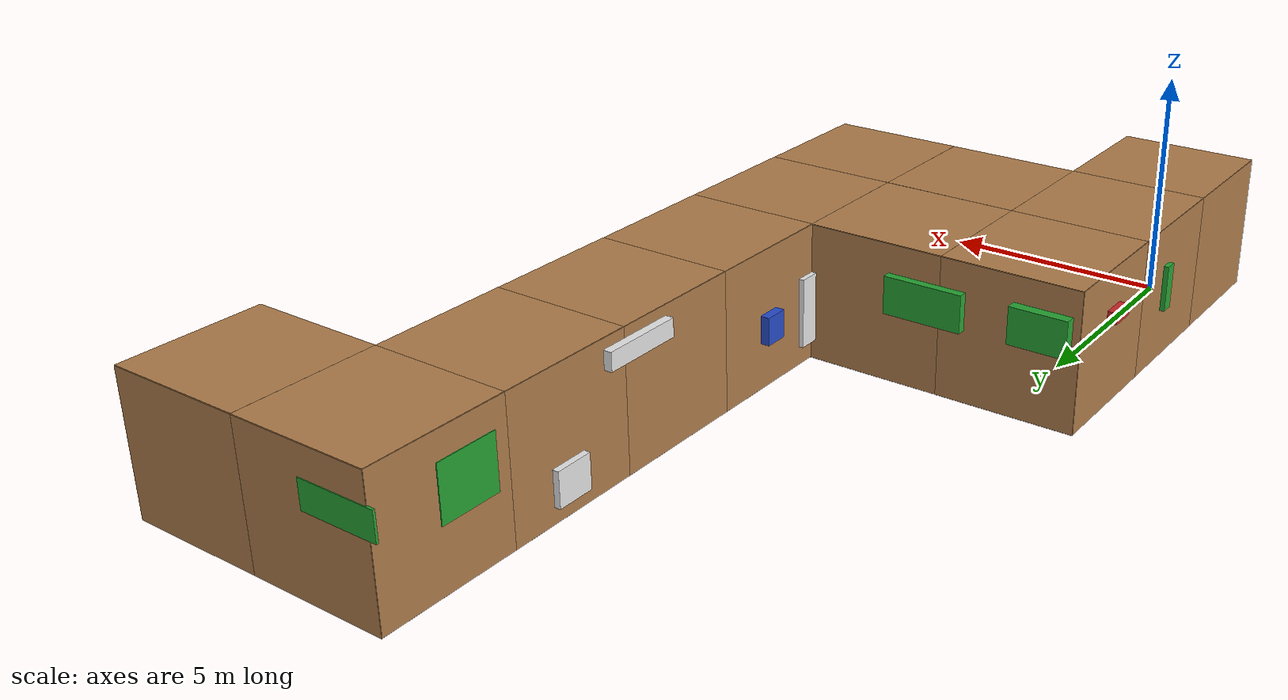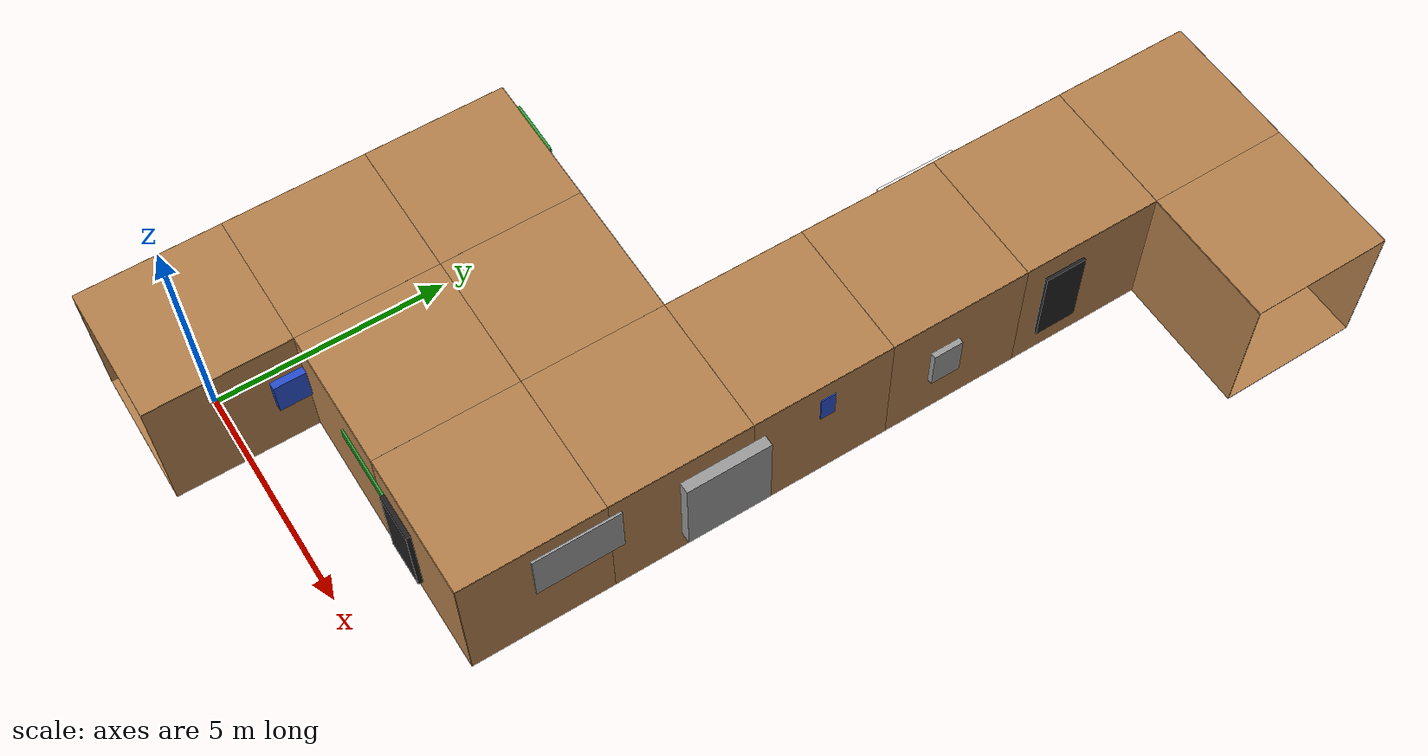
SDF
<?xml version='1.0' encoding='us-ascii'?>
<sdf version="1.6">
  <model name="corridor_wood">
    <model name="wall_right_0_0_0_0">
      <static>1</static>
      <pose>1.5 0.0 1.5 0.0 0.0 1.57</pose>
      <link name="link">
        <collision name="collision">
          <geometry>
            <box>
              <size>3 0.02 3</size>
            </box>
          </geometry>
        </collision>
        <visual name="visual">
          <material>
            <script>
              <name>Gazebo/WoodFloor</name>
              <uri>file://media/materials/scripts/gazebo.material</uri>
            </script>
          </material>
          <geometry>
            <box>
              <size>3 0.02 3</size>
            </box>
          </geometry>
        </visual>
      </link>
    </model>
    <model name="wall_left_0_0_0_0">
      <static>1</static>
      <pose>-1.5 0.0 1.5 0.0 0.0 1.57</pose>
      <link name="link">
        <collision name="collision">
          <geometry>
            <box>
              <size>3 0.02 3</size>
            </box>
          </geometry>
        </collision>
        <visual name="visual">
          <material>
            <script>
              <name>Gazebo/WoodFloor</name>
              <uri>file://media/materials/scripts/gazebo.material</uri>
            </script>
          </material>
          <geometry>
            <box>
              <size>3 0.02 3</size>
            </box>
          </geometry>
        </visual>
      </link>
    </model>
    <model name="wall_top_0_0_0_0">
      <static>1</static>
      <pose>0.0 0.0 3.0 1.57 0.0 0.0</pose>
      <link name="link">
        <collision name="collision">
          <geometry>
            <box>
              <size>3 0.02 3</size>
            </box>
          </geometry>
        </collision>
        <visual name="visual">
          <material>
            <script>
              <name>Gazebo/WoodFloor</name>
              <uri>file://media/materials/scripts/gazebo.material</uri>
            </script>
          </material>
          <geometry>
            <box>
              <size>3 0.02 3</size>
            </box>
          </geometry>
        </visual>
      </link>
    </model>
    <model name="wall_bottom_0_0_0_0">
      <static>1</static>
      <pose>0.0 0.0 0.0 1.57 0.0 0.0</pose>
      <link name="link">
        <collision name="collision">
          <geometry>
            <box>
              <size>3 0.02 3</size>
            </box>
          </geometry>
        </collision>
        <visual name="visual">
          <material>
            <script>
              <name>Gazebo/WoodFloor</name>
              <uri>file://media/materials/scripts/gazebo.material</uri>
            </script>
          </material>
          <geometry>
            <box>
              <size>3 0.02 3</size>
            </box>
          </geometry>
        </visual>
      </link>
    </model>
    <model name="wall_right_0_1_0_1">
      <static>1</static>
      <pose>1.5 3.0 1.5 0.0 0.0 1.57</pose>
      <link name="link">
        <collision name="collision">
          <geometry>
            <box>
              <size>3 0.02 3</size>
            </box>
          </geometry>
        </collision>
        <visual name="visual">
          <material>
            <script>
              <name>Gazebo/WoodFloor</name>
              <uri>file://media/materials/scripts/gazebo.material</uri>
            </script>
          </material>
          <geometry>
            <box>
              <size>3 0.02 3</size>
            </box>
          </geometry>
        </visual>
      </link>
    </model>
    <model name="wall_left_0_1_0_1">
      <static>1</static>
      <pose>-1.5 3.0 1.5 0.0 0.0 1.57</pose>
      <link name="link">
        <collision name="collision">
          <geometry>
            <box>
              <size>3 0.02 3</size>
            </box>
          </geometry>
        </collision>
        <visual name="visual">
          <material>
            <script>
              <name>Gazebo/WoodFloor</name>
              <uri>file://media/materials/scripts/gazebo.material</uri>
            </script>
          </material>
          <geometry>
            <box>
              <size>3 0.02 3</size>
            </box>
          </geometry>
        </visual>
      </link>
    </model>
    <model name="wall_top_0_1_0_1">
      <static>1</static>
      <pose>0.0 3.0 3.0 1.57 0.0 0.0</pose>
      <link name="link">
        <collision name="collision">
          <geometry>
            <box>
              <size>3 0.02 3</size>
            </box>
          </geometry>
        </collision>
        <visual name="visual">
          <material>
            <script>
              <name>Gazebo/WoodFloor</name>
              <uri>file://media/materials/scripts/gazebo.material</uri>
            </script>
          </material>
          <geometry>
            <box>
              <size>3 0.02 3</size>
            </box>
          </geometry>
        </visual>
      </link>
    </model>
    <model name="wall_bottom_0_1_0_1">
      <static>1</static>
      <pose>0.0 3.0 0.0 1.57 0.0 0.0</pose>
      <link name="link">
        <collision name="collision">
          <geometry>
            <box>
              <size>3 0.02 3</size>
            </box>
          </geometry>
        </collision>
        <visual name="visual">
          <material>
            <script>
              <name>Gazebo/WoodFloor</name>
              <uri>file://media/materials/scripts/gazebo.material</uri>
            </script>
          </material>
          <geometry>
            <box>
              <size>3 0.02 3</size>
            </box>
          </geometry>
        </visual>
      </link>
    </model>
    <model name="panel_0_1_0_1">
      <static>1</static>
      <pose>-1.5 3.331047748664364 1.62310669647 0.0 0.0 0.0</pose>
      <link name="link">
        <collision name="collision">
          <geometry>
            <box>
              <size>0.227891967127 0.286861621309 0.992219195227</size>
            </box>
          </geometry>
        </collision>
        <visual name="visual">
          <material>
            <script>
              <name>Gazebo/Green</name>
              <uri>file://media/materials/scripts/gazebo.material</uri>
            </script>
          </material>
          <geometry>
            <box>
              <size>0.227891967127 0.286861621309 0.992219195227</size>
            </box>
          </geometry>
        </visual>
      </link>
    </model>
    <model name="panel_0_1_1_1">
      <static>1</static>
      <pose>1.5 1.7800548940044145 1.67422577796 0.0 0.0 0.0</pose>
      <link name="link">
        <collision name="collision">
          <geometry>
            <box>
              <size>0.341212131548 1.92256971082 0.76470502832</size>
            </box>
          </geometry>
        </collision>
        <visual name="visual">
          <material>
            <script>
              <name>Gazebo/Blue</name>
              <uri>file://media/materials/scripts/gazebo.material</uri>
            </script>
          </material>
          <geometry>
            <box>
              <size>0.341212131548 1.92256971082 0.76470502832</size>
            </box>
          </geometry>
        </visual>
      </link>
    </model>
    <model name="wall_front_0_2_0_2">
      <static>1</static>
      <pose>0.0 7.5 1.5 0.0 0.0 0.0</pose>
      <link name="link">
        <collision name="collision">
          <geometry>
            <box>
              <size>3 0.02 3</size>
            </box>
          </geometry>
        </collision>
        <visual name="visual">
          <material>
            <script>
              <name>Gazebo/WoodFloor</name>
              <uri>file://media/materials/scripts/gazebo.material</uri>
            </script>
          </material>
          <geometry>
            <box>
              <size>3 0.02 3</size>
            </box>
          </geometry>
        </visual>
      </link>
    </model>
    <model name="wall_left_0_2_0_2">
      <static>1</static>
      <pose>-1.5 6.0 1.5 0.0 0.0 1.57</pose>
      <link name="link">
        <collision name="collision">
          <geometry>
            <box>
              <size>3 0.02 3</size>
            </box>
          </geometry>
        </collision>
        <visual name="visual">
          <material>
            <script>
              <name>Gazebo/WoodFloor</name>
              <uri>file://media/materials/scripts/gazebo.material</uri>
            </script>
          </material>
          <geometry>
            <box>
              <size>3 0.02 3</size>
            </box>
          </geometry>
        </visual>
      </link>
    </model>
    <model name="wall_top_0_2_0_2">
      <static>1</static>
      <pose>0.0 6.0 3.0 1.57 0.0 0.0</pose>
      <link name="link">
        <collision name="collision">
          <geometry>
            <box>
              <size>3 0.02 3</size>
            </box>
          </geometry>
        </collision>
        <visual name="visual">
          <material>
            <script>
              <name>Gazebo/WoodFloor</name>
              <uri>file://media/materials/scripts/gazebo.material</uri>
            </script>
          </material>
          <geometry>
            <box>
              <size>3 0.02 3</size>
            </box>
          </geometry>
        </visual>
      </link>
    </model>
    <model name="wall_bottom_0_2_0_2">
      <static>1</static>
      <pose>0.0 6.0 0.0 1.57 0.0 0.0</pose>
      <link name="link">
        <collision name="collision">
          <geometry>
            <box>
              <size>3 0.02 3</size>
            </box>
          </geometry>
        </collision>
        <visual name="visual">
          <material>
            <script>
              <name>Gazebo/WoodFloor</name>
              <uri>file://media/materials/scripts/gazebo.material</uri>
            </script>
          </material>
          <geometry>
            <box>
              <size>3 0.02 3</size>
            </box>
          </geometry>
        </visual>
      </link>
    </model>
    <model name="panel_0_2_0_2">
      <static>1</static>
      <pose>-1.5 6.016824595635878 2.04890038794 0.0 0.0 0.0</pose>
      <link name="link">
        <collision name="collision">
          <geometry>
            <box>
              <size>0.428532003397 0.573175527415 0.240866871531</size>
            </box>
          </geometry>
        </collision>
        <visual name="visual">
          <material>
            <script>
              <name>Gazebo/Red</name>
              <uri>file://media/materials/scripts/gazebo.material</uri>
            </script>
          </material>
          <geometry>
            <box>
              <size>0.428532003397 0.573175527415 0.240866871531</size>
            </box>
          </geometry>
        </visual>
      </link>
    </model>
    <model name="panel_0_2_1_2">
      <static>1</static>
      <pose>-0.7196081561729433 7.5 2.04670019403 0.0 0.0 1.57</pose>
      <link name="link">
        <collision name="collision">
          <geometry>
            <box>
              <size>0.485968628858 1.23503073666 0.792312905663</size>
            </box>
          </geometry>
        </collision>
        <visual name="visual">
          <material>
            <script>
              <name>Gazebo/Green</name>
              <uri>file://media/materials/scripts/gazebo.material</uri>
            </script>
          </material>
          <geometry>
            <box>
              <size>0.485968628858 1.23503073666 0.792312905663</size>
            </box>
          </geometry>
        </visual>
      </link>
    </model>
    <model name="wall_front_1_2_0_2">
      <static>1</static>
      <pose>4.5 6.0 1.5 0.0 0.0 -1.57</pose>
      <link name="link">
        <collision name="collision">
          <geometry>
            <box>
              <size>3 0.02 3</size>
            </box>
          </geometry>
        </collision>
        <visual name="visual">
          <material>
            <script>
              <name>Gazebo/WoodFloor</name>
              <uri>file://media/materials/scripts/gazebo.material</uri>
            </script>
          </material>
          <geometry>
            <box>
              <size>3 0.02 3</size>
            </box>
          </geometry>
        </visual>
      </link>
    </model>
    <model name="wall_left_1_2_0_2">
      <static>1</static>
      <pose>3.0 7.5 1.5 0.0 0.0 0.0</pose>
      <link name="link">
        <collision name="collision">
          <geometry>
            <box>
              <size>3 0.02 3</size>
            </box>
          </geometry>
        </collision>
        <visual name="visual">
          <material>
            <script>
              <name>Gazebo/WoodFloor</name>
              <uri>file://media/materials/scripts/gazebo.material</uri>
            </script>
          </material>
          <geometry>
            <box>
              <size>3 0.02 3</size>
            </box>
          </geometry>
        </visual>
      </link>
    </model>
    <model name="wall_top_1_2_0_2">
      <static>1</static>
      <pose>3.0 6.0 3.0 1.57 0.0 -1.57</pose>
      <link name="link">
        <collision name="collision">
          <geometry>
            <box>
              <size>3 0.02 3</size>
            </box>
          </geometry>
        </collision>
        <visual name="visual">
          <material>
            <script>
              <name>Gazebo/WoodFloor</name>
              <uri>file://media/materials/scripts/gazebo.material</uri>
            </script>
          </material>
          <geometry>
            <box>
              <size>3 0.02 3</size>
            </box>
          </geometry>
        </visual>
      </link>
    </model>
    <model name="wall_bottom_1_2_0_2">
      <static>1</static>
      <pose>3.0 6.0 0.0 1.57 0.0 -1.57</pose>
      <link name="link">
        <collision name="collision">
          <geometry>
            <box>
              <size>3 0.02 3</size>
            </box>
          </geometry>
        </collision>
        <visual name="visual">
          <material>
            <script>
              <name>Gazebo/WoodFloor</name>
              <uri>file://media/materials/scripts/gazebo.material</uri>
            </script>
          </material>
          <geometry>
            <box>
              <size>3 0.02 3</size>
            </box>
          </geometry>
        </visual>
      </link>
    </model>
    <model name="panel_1_2_0_2">
      <static>1</static>
      <pose>1.7922977335804722 7.5 1.96970691631 0.0 0.0 -1.57</pose>
      <link name="link">
        <collision name="collision">
          <geometry>
            <box>
              <size>0.400242912424 1.72234589471 0.81605229614</size>
            </box>
          </geometry>
        </collision>
        <visual name="visual">
          <material>
            <script>
              <name>Gazebo/Green</name>
              <uri>file://media/materials/scripts/gazebo.material</uri>
            </script>
          </material>
          <geometry>
            <box>
              <size>0.400242912424 1.72234589471 0.81605229614</size>
            </box>
          </geometry>
        </visual>
      </link>
    </model>
    <model name="panel_1_2_1_2">
      <static>1</static>
      <pose>4.5 5.887159069608958 1.518289515 0.0 0.0 0.0</pose>
      <link name="link">
        <collision name="collision">
          <geometry>
            <box>
              <size>0.31830925449 0.402979886042 1.96029187354</size>
            </box>
          </geometry>
        </collision>
        <visual name="visual">
          <material>
            <script>
              <name>Gazebo/Red</name>
              <uri>file://media/materials/scripts/gazebo.material</uri>
            </script>
          </material>
          <geometry>
            <box>
              <size>0.31830925449 0.402979886042 1.96029187354</size>
            </box>
          </geometry>
        </visual>
      </link>
    </model>
    <model name="wall_front_1_1_0_3">
      <static>1</static>
      <pose>3.0 1.5 1.5 0.0 0.0 3.14</pose>
      <link name="link">
        <collision name="collision">
          <geometry>
            <box>
              <size>3 0.02 3</size>
            </box>
          </geometry>
        </collision>
        <visual name="visual">
          <material>
            <script>
              <name>Gazebo/WoodFloor</name>
              <uri>file://media/materials/scripts/gazebo.material</uri>
            </script>
          </material>
          <geometry>
            <box>
              <size>3 0.02 3</size>
            </box>
          </geometry>
        </visual>
      </link>
    </model>
    <model name="wall_right_1_1_0_3">
      <static>1</static>
      <pose>1.5 3.0 1.5 0.0 0.0 4.71</pose>
      <link name="link">
        <collision name="collision">
          <geometry>
            <box>
              <size>3 0.02 3</size>
            </box>
          </geometry>
        </collision>
        <visual name="visual">
          <material>
            <script>
              <name>Gazebo/WoodFloor</name>
              <uri>file://media/materials/scripts/gazebo.material</uri>
            </script>
          </material>
          <geometry>
            <box>
              <size>3 0.02 3</size>
            </box>
          </geometry>
        </visual>
      </link>
    </model>
    <model name="wall_top_1_1_0_3">
      <static>1</static>
      <pose>3.0 3.0 3.0 1.57 0.0 3.14</pose>
      <link name="link">
        <collision name="collision">
          <geometry>
            <box>
              <size>3 0.02 3</size>
            </box>
          </geometry>
        </collision>
        <visual name="visual">
          <material>
            <script>
              <name>Gazebo/WoodFloor</name>
              <uri>file://media/materials/scripts/gazebo.material</uri>
            </script>
          </material>
          <geometry>
            <box>
              <size>3 0.02 3</size>
            </box>
          </geometry>
        </visual>
      </link>
    </model>
    <model name="wall_bottom_1_1_0_3">
      <static>1</static>
      <pose>3.0 3.0 0.0 1.57 0.0 3.14</pose>
      <link name="link">
        <collision name="collision">
          <geometry>
            <box>
              <size>3 0.02 3</size>
            </box>
          </geometry>
        </collision>
        <visual name="visual">
          <material>
            <script>
              <name>Gazebo/WoodFloor</name>
              <uri>file://media/materials/scripts/gazebo.material</uri>
            </script>
          </material>
          <geometry>
            <box>
              <size>3 0.02 3</size>
            </box>
          </geometry>
        </visual>
      </link>
    </model>
    <model name="panel_1_1_0_3">
      <static>1</static>
      <pose>1.5 2.7317593252260473 2.20752770361 0.0 0.0 3.14</pose>
      <link name="link">
        <collision name="collision">
          <geometry>
            <box>
              <size>0.26485547791 0.454269086721 0.879510129666</size>
            </box>
          </geometry>
        </collision>
        <visual name="visual">
          <material>
            <script>
              <name>Gazebo/Red</name>
              <uri>file://media/materials/scripts/gazebo.material</uri>
            </script>
          </material>
          <geometry>
            <box>
              <size>0.26485547791 0.454269086721 0.879510129666</size>
            </box>
          </geometry>
        </visual>
      </link>
    </model>
    <model name="panel_1_1_1_3">
      <static>1</static>
      <pose>4.203759438638075 1.5 2.12378672634 0.0 0.0 4.71</pose>
      <link name="link">
        <collision name="collision">
          <geometry>
            <box>
              <size>0.108125171131 1.99956372455 0.220673910054</size>
            </box>
          </geometry>
        </collision>
        <visual name="visual">
          <material>
            <script>
              <name>Gazebo/Green</name>
              <uri>file://media/materials/scripts/gazebo.material</uri>
            </script>
          </material>
          <geometry>
            <box>
              <size>0.108125171131 1.99956372455 0.220673910054</size>
            </box>
          </geometry>
        </visual>
      </link>
    </model>
    <model name="wall_front_2_1_0_3">
      <static>1</static>
      <pose>7.5 3.0 1.5 0.0 0.0 -1.57</pose>
      <link name="link">
        <collision name="collision">
          <geometry>
            <box>
              <size>3 0.02 3</size>
            </box>
          </geometry>
        </collision>
        <visual name="visual">
          <material>
            <script>
              <name>Gazebo/WoodFloor</name>
              <uri>file://media/materials/scripts/gazebo.material</uri>
            </script>
          </material>
          <geometry>
            <box>
              <size>3 0.02 3</size>
            </box>
          </geometry>
        </visual>
      </link>
    </model>
    <model name="wall_right_2_1_0_3">
      <static>1</static>
      <pose>6.0 1.5 1.5 0.0 0.0 0.0</pose>
      <link name="link">
        <collision name="collision">
          <geometry>
            <box>
              <size>3 0.02 3</size>
            </box>
          </geometry>
        </collision>
        <visual name="visual">
          <material>
            <script>
              <name>Gazebo/WoodFloor</name>
              <uri>file://media/materials/scripts/gazebo.material</uri>
            </script>
          </material>
          <geometry>
            <box>
              <size>3 0.02 3</size>
            </box>
          </geometry>
        </visual>
      </link>
    </model>
    <model name="wall_top_2_1_0_3">
      <static>1</static>
      <pose>6.0 3.0 3.0 1.57 0.0 -1.57</pose>
      <link name="link">
        <collision name="collision">
          <geometry>
            <box>
              <size>3 0.02 3</size>
            </box>
          </geometry>
        </collision>
        <visual name="visual">
          <material>
            <script>
              <name>Gazebo/WoodFloor</name>
              <uri>file://media/materials/scripts/gazebo.material</uri>
            </script>
          </material>
          <geometry>
            <box>
              <size>3 0.02 3</size>
            </box>
          </geometry>
        </visual>
      </link>
    </model>
    <model name="wall_bottom_2_1_0_3">
      <static>1</static>
      <pose>6.0 3.0 0.0 1.57 0.0 -1.57</pose>
      <link name="link">
        <collision name="collision">
          <geometry>
            <box>
              <size>3 0.02 3</size>
            </box>
          </geometry>
        </collision>
        <visual name="visual">
          <material>
            <script>
              <name>Gazebo/WoodFloor</name>
              <uri>file://media/materials/scripts/gazebo.material</uri>
            </script>
          </material>
          <geometry>
            <box>
              <size>3 0.02 3</size>
            </box>
          </geometry>
        </visual>
      </link>
    </model>
    <model name="panel_2_1_0_3">
      <static>1</static>
      <pose>5.30611550686144 1.5 1.38783729444 0.0 0.0 -1.57</pose>
      <link name="link">
        <collision name="collision">
          <geometry>
            <box>
              <size>0.222668644864 0.98060975829 1.80105485366</size>
            </box>
          </geometry>
        </collision>
        <visual name="visual">
          <material>
            <script>
              <name>Gazebo/Black</name>
              <uri>file://media/materials/scripts/gazebo.material</uri>
            </script>
          </material>
          <geometry>
            <box>
              <size>0.222668644864 0.98060975829 1.80105485366</size>
            </box>
          </geometry>
        </visual>
      </link>
    </model>
    <model name="panel_2_1_1_3">
      <static>1</static>
      <pose>7.5 3.838351233464932 2.04506014941 0.0 0.0 0.0</pose>
      <link name="link">
        <collision name="collision">
          <geometry>
            <box>
              <size>0.112641492494 1.81525155327 1.17501379403</size>
            </box>
          </geometry>
        </collision>
        <visual name="visual">
          <material>
            <script>
              <name>Gazebo/Grey</name>
              <uri>file://media/materials/scripts/gazebo.material</uri>
            </script>
          </material>
          <geometry>
            <box>
              <size>0.112641492494 1.81525155327 1.17501379403</size>
            </box>
          </geometry>
        </visual>
      </link>
    </model>
    <model name="wall_right_2_2_0_1">
      <static>1</static>
      <pose>7.5 6.0 1.5 0.0 0.0 1.57</pose>
      <link name="link">
        <collision name="collision">
          <geometry>
            <box>
              <size>3 0.02 3</size>
            </box>
          </geometry>
        </collision>
        <visual name="visual">
          <material>
            <script>
              <name>Gazebo/WoodFloor</name>
              <uri>file://media/materials/scripts/gazebo.material</uri>
            </script>
          </material>
          <geometry>
            <box>
              <size>3 0.02 3</size>
            </box>
          </geometry>
        </visual>
      </link>
    </model>
    <model name="wall_left_2_2_0_1">
      <static>1</static>
      <pose>4.5 6.0 1.5 0.0 0.0 1.57</pose>
      <link name="link">
        <collision name="collision">
          <geometry>
            <box>
              <size>3 0.02 3</size>
            </box>
          </geometry>
        </collision>
        <visual name="visual">
          <material>
            <script>
              <name>Gazebo/WoodFloor</name>
              <uri>file://media/materials/scripts/gazebo.material</uri>
            </script>
          </material>
          <geometry>
            <box>
              <size>3 0.02 3</size>
            </box>
          </geometry>
        </visual>
      </link>
    </model>
    <model name="wall_top_2_2_0_1">
      <static>1</static>
      <pose>6.0 6.0 3.0 1.57 0.0 0.0</pose>
      <link name="link">
        <collision name="collision">
          <geometry>
            <box>
              <size>3 0.02 3</size>
            </box>
          </geometry>
        </collision>
        <visual name="visual">
          <material>
            <script>
              <name>Gazebo/WoodFloor</name>
              <uri>file://media/materials/scripts/gazebo.material</uri>
            </script>
          </material>
          <geometry>
            <box>
              <size>3 0.02 3</size>
            </box>
          </geometry>
        </visual>
      </link>
    </model>
    <model name="wall_bottom_2_2_0_1">
      <static>1</static>
      <pose>6.0 6.0 0.0 1.57 0.0 0.0</pose>
      <link name="link">
        <collision name="collision">
          <geometry>
            <box>
              <size>3 0.02 3</size>
            </box>
          </geometry>
        </collision>
        <visual name="visual">
          <material>
            <script>
              <name>Gazebo/WoodFloor</name>
              <uri>file://media/materials/scripts/gazebo.material</uri>
            </script>
          </material>
          <geometry>
            <box>
              <size>3 0.02 3</size>
            </box>
          </geometry>
        </visual>
      </link>
    </model>
    <model name="panel_2_2_0_1">
      <static>1</static>
      <pose>7.5 6.8416956142877385 1.47997702219 0.0 0.0 0.0</pose>
      <link name="link">
        <collision name="collision">
          <geometry>
            <box>
              <size>0.475735594733 1.79334089281 1.92150373224</size>
            </box>
          </geometry>
        </collision>
        <visual name="visual">
          <material>
            <script>
              <name>Gazebo/Grey</name>
              <uri>file://media/materials/scripts/gazebo.material</uri>
            </script>
          </material>
          <geometry>
            <box>
              <size>0.475735594733 1.79334089281 1.92150373224</size>
            </box>
          </geometry>
        </visual>
      </link>
    </model>
    <model name="panel_2_2_1_1">
      <static>1</static>
      <pose>4.5 7.031312445269143 1.18704960571 0.0 0.0 0.0</pose>
      <link name="link">
        <collision name="collision">
          <geometry>
            <box>
              <size>0.239492946745 1.87810744062 1.52634486838</size>
            </box>
          </geometry>
        </collision>
        <visual name="visual">
          <material>
            <script>
              <name>Gazebo/White</name>
              <uri>file://media/materials/scripts/gazebo.material</uri>
            </script>
          </material>
          <geometry>
            <box>
              <size>0.239492946745 1.87810744062 1.52634486838</size>
            </box>
          </geometry>
        </visual>
      </link>
    </model>
    <model name="wall_right_2_3_0_1">
      <static>1</static>
      <pose>7.5 9.0 1.5 0.0 0.0 1.57</pose>
      <link name="link">
        <collision name="collision">
          <geometry>
            <box>
              <size>3 0.02 3</size>
            </box>
          </geometry>
        </collision>
        <visual name="visual">
          <material>
            <script>
              <name>Gazebo/WoodFloor</name>
              <uri>file://media/materials/scripts/gazebo.material</uri>
            </script>
          </material>
          <geometry>
            <box>
              <size>3 0.02 3</size>
            </box>
          </geometry>
        </visual>
      </link>
    </model>
    <model name="wall_left_2_3_0_1">
      <static>1</static>
      <pose>4.5 9.0 1.5 0.0 0.0 1.57</pose>
      <link name="link">
        <collision name="collision">
          <geometry>
            <box>
              <size>3 0.02 3</size>
            </box>
          </geometry>
        </collision>
        <visual name="visual">
          <material>
            <script>
              <name>Gazebo/WoodFloor</name>
              <uri>file://media/materials/scripts/gazebo.material</uri>
            </script>
          </material>
          <geometry>
            <box>
              <size>3 0.02 3</size>
            </box>
          </geometry>
        </visual>
      </link>
    </model>
    <model name="wall_top_2_3_0_1">
      <static>1</static>
      <pose>6.0 9.0 3.0 1.57 0.0 0.0</pose>
      <link name="link">
        <collision name="collision">
          <geometry>
            <box>
              <size>3 0.02 3</size>
            </box>
          </geometry>
        </collision>
        <visual name="visual">
          <material>
            <script>
              <name>Gazebo/WoodFloor</name>
              <uri>file://media/materials/scripts/gazebo.material</uri>
            </script>
          </material>
          <geometry>
            <box>
              <size>3 0.02 3</size>
            </box>
          </geometry>
        </visual>
      </link>
    </model>
    <model name="wall_bottom_2_3_0_1">
      <static>1</static>
      <pose>6.0 9.0 0.0 1.57 0.0 0.0</pose>
      <link name="link">
        <collision name="collision">
          <geometry>
            <box>
              <size>3 0.02 3</size>
            </box>
          </geometry>
        </collision>
        <visual name="visual">
          <material>
            <script>
              <name>Gazebo/WoodFloor</name>
              <uri>file://media/materials/scripts/gazebo.material</uri>
            </script>
          </material>
          <geometry>
            <box>
              <size>3 0.02 3</size>
            </box>
          </geometry>
        </visual>
      </link>
    </model>
    <model name="panel_2_3_0_1">
      <static>1</static>
      <pose>7.5 9.082100646405088 2.25308598516 0.0 0.0 0.0</pose>
      <link name="link">
        <collision name="collision">
          <geometry>
            <box>
              <size>0.0650689731958 0.317807333454 0.627186238534</size>
            </box>
          </geometry>
        </collision>
        <visual name="visual">
          <material>
            <script>
              <name>Gazebo/Blue</name>
              <uri>file://media/materials/scripts/gazebo.material</uri>
            </script>
          </material>
          <geometry>
            <box>
              <size>0.0650689731958 0.317807333454 0.627186238534</size>
            </box>
          </geometry>
        </visual>
      </link>
    </model>
    <model name="panel_2_3_1_1">
      <static>1</static>
      <pose>4.5 9.07159710192313 1.33131024656 0.0 0.0 0.0</pose>
      <link name="link">
        <collision name="collision">
          <geometry>
            <box>
              <size>0.417185237348 0.529709062058 0.606294699528</size>
            </box>
          </geometry>
        </collision>
        <visual name="visual">
          <material>
            <script>
              <name>Gazebo/Blue</name>
              <uri>file://media/materials/scripts/gazebo.material</uri>
            </script>
          </material>
          <geometry>
            <box>
              <size>0.417185237348 0.529709062058 0.606294699528</size>
            </box>
          </geometry>
        </visual>
      </link>
    </model>
    <model name="wall_right_2_4_0_1">
      <static>1</static>
      <pose>7.5 12.0 1.5 0.0 0.0 1.57</pose>
      <link name="link">
        <collision name="collision">
          <geometry>
            <box>
              <size>3 0.02 3</size>
            </box>
          </geometry>
        </collision>
        <visual name="visual">
          <material>
            <script>
              <name>Gazebo/WoodFloor</name>
              <uri>file://media/materials/scripts/gazebo.material</uri>
            </script>
          </material>
          <geometry>
            <box>
              <size>3 0.02 3</size>
            </box>
          </geometry>
        </visual>
      </link>
    </model>
    <model name="wall_left_2_4_0_1">
      <static>1</static>
      <pose>4.5 12.0 1.5 0.0 0.0 1.57</pose>
      <link name="link">
        <collision name="collision">
          <geometry>
            <box>
              <size>3 0.02 3</size>
            </box>
          </geometry>
        </collision>
        <visual name="visual">
          <material>
            <script>
              <name>Gazebo/WoodFloor</name>
              <uri>file://media/materials/scripts/gazebo.material</uri>
            </script>
          </material>
          <geometry>
            <box>
              <size>3 0.02 3</size>
            </box>
          </geometry>
        </visual>
      </link>
    </model>
    <model name="wall_top_2_4_0_1">
      <static>1</static>
      <pose>6.0 12.0 3.0 1.57 0.0 0.0</pose>
      <link name="link">
        <collision name="collision">
          <geometry>
            <box>
              <size>3 0.02 3</size>
            </box>
          </geometry>
        </collision>
        <visual name="visual">
          <material>
            <script>
              <name>Gazebo/WoodFloor</name>
              <uri>file://media/materials/scripts/gazebo.material</uri>
            </script>
          </material>
          <geometry>
            <box>
              <size>3 0.02 3</size>
            </box>
          </geometry>
        </visual>
      </link>
    </model>
    <model name="wall_bottom_2_4_0_1">
      <static>1</static>
      <pose>6.0 12.0 0.0 1.57 0.0 0.0</pose>
      <link name="link">
        <collision name="collision">
          <geometry>
            <box>
              <size>3 0.02 3</size>
            </box>
          </geometry>
        </collision>
        <visual name="visual">
          <material>
            <script>
              <name>Gazebo/WoodFloor</name>
              <uri>file://media/materials/scripts/gazebo.material</uri>
            </script>
          </material>
          <geometry>
            <box>
              <size>3 0.02 3</size>
            </box>
          </geometry>
        </visual>
      </link>
    </model>
    <model name="panel_2_4_0_1">
      <static>1</static>
      <pose>7.5 11.720896871698546 1.56400006175 0.0 0.0 0.0</pose>
      <link name="link">
        <collision name="collision">
          <geometry>
            <box>
              <size>0.254886543222 0.63744263287 0.91540111249</size>
            </box>
          </geometry>
        </collision>
        <visual name="visual">
          <material>
            <script>
              <name>Gazebo/Grey</name>
              <uri>file://media/materials/scripts/gazebo.material</uri>
            </script>
          </material>
          <geometry>
            <box>
              <size>0.254886543222 0.63744263287 0.91540111249</size>
            </box>
          </geometry>
        </visual>
      </link>
    </model>
    <model name="panel_2_4_1_1">
      <static>1</static>
      <pose>4.5 13.202755083511517 2.58946666784 0.0 0.0 0.0</pose>
      <link name="link">
        <collision name="collision">
          <geometry>
            <box>
              <size>0.372575309283 1.74182074581 0.387741770899</size>
            </box>
          </geometry>
        </collision>
        <visual name="visual">
          <material>
            <script>
              <name>Gazebo/White</name>
              <uri>file://media/materials/scripts/gazebo.material</uri>
            </script>
          </material>
          <geometry>
            <box>
              <size>0.372575309283 1.74182074581 0.387741770899</size>
            </box>
          </geometry>
        </visual>
      </link>
    </model>
    <model name="wall_right_2_5_0_1">
      <static>1</static>
      <pose>7.5 15.0 1.5 0.0 0.0 1.57</pose>
      <link name="link">
        <collision name="collision">
          <geometry>
            <box>
              <size>3 0.02 3</size>
            </box>
          </geometry>
        </collision>
        <visual name="visual">
          <material>
            <script>
              <name>Gazebo/WoodFloor</name>
              <uri>file://media/materials/scripts/gazebo.material</uri>
            </script>
          </material>
          <geometry>
            <box>
              <size>3 0.02 3</size>
            </box>
          </geometry>
        </visual>
      </link>
    </model>
    <model name="wall_left_2_5_0_1">
      <static>1</static>
      <pose>4.5 15.0 1.5 0.0 0.0 1.57</pose>
      <link name="link">
        <collision name="collision">
          <geometry>
            <box>
              <size>3 0.02 3</size>
            </box>
          </geometry>
        </collision>
        <visual name="visual">
          <material>
            <script>
              <name>Gazebo/WoodFloor</name>
              <uri>file://media/materials/scripts/gazebo.material</uri>
            </script>
          </material>
          <geometry>
            <box>
              <size>3 0.02 3</size>
            </box>
          </geometry>
        </visual>
      </link>
    </model>
    <model name="wall_top_2_5_0_1">
      <static>1</static>
      <pose>6.0 15.0 3.0 1.57 0.0 0.0</pose>
      <link name="link">
        <collision name="collision">
          <geometry>
            <box>
              <size>3 0.02 3</size>
            </box>
          </geometry>
        </collision>
        <visual name="visual">
          <material>
            <script>
              <name>Gazebo/WoodFloor</name>
              <uri>file://media/materials/scripts/gazebo.material</uri>
            </script>
          </material>
          <geometry>
            <box>
              <size>3 0.02 3</size>
            </box>
          </geometry>
        </visual>
      </link>
    </model>
    <model name="wall_bottom_2_5_0_1">
      <static>1</static>
      <pose>6.0 15.0 0.0 1.57 0.0 0.0</pose>
      <link name="link">
        <collision name="collision">
          <geometry>
            <box>
              <size>3 0.02 3</size>
            </box>
          </geometry>
        </collision>
        <visual name="visual">
          <material>
            <script>
              <name>Gazebo/WoodFloor</name>
              <uri>file://media/materials/scripts/gazebo.material</uri>
            </script>
          </material>
          <geometry>
            <box>
              <size>3 0.02 3</size>
            </box>
          </geometry>
        </visual>
      </link>
    </model>
    <model name="panel_2_5_0_1">
      <static>1</static>
      <pose>7.5 14.424531538256202 1.51788534705 0.0 0.0 0.0</pose>
      <link name="link">
        <collision name="collision">
          <geometry>
            <box>
              <size>0.1588479792 0.902411431831 1.84008772112</size>
            </box>
          </geometry>
        </collision>
        <visual name="visual">
          <material>
            <script>
              <name>Gazebo/Black</name>
              <uri>file://media/materials/scripts/gazebo.material</uri>
            </script>
          </material>
          <geometry>
            <box>
              <size>0.1588479792 0.902411431831 1.84008772112</size>
            </box>
          </geometry>
        </visual>
      </link>
    </model>
    <model name="panel_2_5_1_1">
      <static>1</static>
      <pose>4.5 15.104141829827888 0.717181762665 0.0 0.0 0.0</pose>
      <link name="link">
        <collision name="collision">
          <geometry>
            <box>
              <size>0.285474475437 0.823062400379 0.745779562074</size>
            </box>
          </geometry>
        </collision>
        <visual name="visual">
          <material>
            <script>
              <name>Gazebo/White</name>
              <uri>file://media/materials/scripts/gazebo.material</uri>
            </script>
          </material>
          <geometry>
            <box>
              <size>0.285474475437 0.823062400379 0.745779562074</size>
            </box>
          </geometry>
        </visual>
      </link>
    </model>
    <model name="wall_front_2_6_0_2">
      <static>1</static>
      <pose>6.0 19.5 1.5 0.0 0.0 0.0</pose>
      <link name="link">
        <collision name="collision">
          <geometry>
            <box>
              <size>3 0.02 3</size>
            </box>
          </geometry>
        </collision>
        <visual name="visual">
          <material>
            <script>
              <name>Gazebo/WoodFloor</name>
              <uri>file://media/materials/scripts/gazebo.material</uri>
            </script>
          </material>
          <geometry>
            <box>
              <size>3 0.02 3</size>
            </box>
          </geometry>
        </visual>
      </link>
    </model>
    <model name="wall_left_2_6_0_2">
      <static>1</static>
      <pose>4.5 18.0 1.5 0.0 0.0 1.57</pose>
      <link name="link">
        <collision name="collision">
          <geometry>
            <box>
              <size>3 0.02 3</size>
            </box>
          </geometry>
        </collision>
        <visual name="visual">
          <material>
            <script>
              <name>Gazebo/WoodFloor</name>
              <uri>file://media/materials/scripts/gazebo.material</uri>
            </script>
          </material>
          <geometry>
            <box>
              <size>3 0.02 3</size>
            </box>
          </geometry>
        </visual>
      </link>
    </model>
    <model name="wall_top_2_6_0_2">
      <static>1</static>
      <pose>6.0 18.0 3.0 1.57 0.0 0.0</pose>
      <link name="link">
        <collision name="collision">
          <geometry>
            <box>
              <size>3 0.02 3</size>
            </box>
          </geometry>
        </collision>
        <visual name="visual">
          <material>
            <script>
              <name>Gazebo/WoodFloor</name>
              <uri>file://media/materials/scripts/gazebo.material</uri>
            </script>
          </material>
          <geometry>
            <box>
              <size>3 0.02 3</size>
            </box>
          </geometry>
        </visual>
      </link>
    </model>
    <model name="wall_bottom_2_6_0_2">
      <static>1</static>
      <pose>6.0 18.0 0.0 1.57 0.0 0.0</pose>
      <link name="link">
        <collision name="collision">
          <geometry>
            <box>
              <size>3 0.02 3</size>
            </box>
          </geometry>
        </collision>
        <visual name="visual">
          <material>
            <script>
              <name>Gazebo/WoodFloor</name>
              <uri>file://media/materials/scripts/gazebo.material</uri>
            </script>
          </material>
          <geometry>
            <box>
              <size>3 0.02 3</size>
            </box>
          </geometry>
        </visual>
      </link>
    </model>
    <model name="panel_2_6_0_2">
      <static>1</static>
      <pose>5.187402552670623 19.5 2.07045615465 0.0 0.0 1.57</pose>
      <link name="link">
        <collision name="collision">
          <geometry>
            <box>
              <size>0.0484675993225 1.69434948294 0.606122538634</size>
            </box>
          </geometry>
        </collision>
        <visual name="visual">
          <material>
            <script>
              <name>Gazebo/Green</name>
              <uri>file://media/materials/scripts/gazebo.material</uri>
            </script>
          </material>
          <geometry>
            <box>
              <size>0.0484675993225 1.69434948294 0.606122538634</size>
            </box>
          </geometry>
        </visual>
      </link>
    </model>
    <model name="panel_2_6_1_2">
      <static>1</static>
      <pose>4.5 17.440740910260704 1.86780150232 0.0 0.0 0.0</pose>
      <link name="link">
        <collision name="collision">
          <geometry>
            <box>
              <size>0.0595850298769 1.30485153209 1.15572781018</size>
            </box>
          </geometry>
        </collision>
        <visual name="visual">
          <material>
            <script>
              <name>Gazebo/Green</name>
              <uri>file://media/materials/scripts/gazebo.material</uri>
            </script>
          </material>
          <geometry>
            <box>
              <size>0.0595850298769 1.30485153209 1.15572781018</size>
            </box>
          </geometry>
        </visual>
      </link>
    </model>
    <model name="wall_right_3_6_0_4">
      <static>1</static>
      <pose>9.0 16.5 1.5 0.0 0.0 0.0</pose>
      <link name="link">
        <collision name="collision">
          <geometry>
            <box>
              <size>3 0.02 3</size>
            </box>
          </geometry>
        </collision>
        <visual name="visual">
          <material>
            <script>
              <name>Gazebo/WoodFloor</name>
              <uri>file://media/materials/scripts/gazebo.material</uri>
            </script>
          </material>
          <geometry>
            <box>
              <size>3 0.02 3</size>
            </box>
          </geometry>
        </visual>
      </link>
    </model>
    <model name="wall_left_3_6_0_4">
      <static>1</static>
      <pose>9.0 19.5 1.5 0.0 0.0 0.0</pose>
      <link name="link">
        <collision name="collision">
          <geometry>
            <box>
              <size>3 0.02 3</size>
            </box>
          </geometry>
        </collision>
        <visual name="visual">
          <material>
            <script>
              <name>Gazebo/WoodFloor</name>
              <uri>file://media/materials/scripts/gazebo.material</uri>
            </script>
          </material>
          <geometry>
            <box>
              <size>3 0.02 3</size>
            </box>
          </geometry>
        </visual>
      </link>
    </model>
    <model name="wall_top_3_6_0_4">
      <static>1</static>
      <pose>9.0 18.0 3.0 1.57 0.0 -1.57</pose>
      <link name="link">
        <collision name="collision">
          <geometry>
            <box>
              <size>3 0.02 3</size>
            </box>
          </geometry>
        </collision>
        <visual name="visual">
          <material>
            <script>
              <name>Gazebo/WoodFloor</name>
              <uri>file://media/materials/scripts/gazebo.material</uri>
            </script>
          </material>
          <geometry>
            <box>
              <size>3 0.02 3</size>
            </box>
          </geometry>
        </visual>
      </link>
    </model>
    <model name="wall_bottom_3_6_0_4">
      <static>1</static>
      <pose>9.0 18.0 0.0 1.57 0.0 -1.57</pose>
      <link name="link">
        <collision name="collision">
          <geometry>
            <box>
              <size>3 0.02 3</size>
            </box>
          </geometry>
        </collision>
        <visual name="visual">
          <material>
            <script>
              <name>Gazebo/WoodFloor</name>
              <uri>file://media/materials/scripts/gazebo.material</uri>
            </script>
          </material>
          <geometry>
            <box>
              <size>3 0.02 3</size>
            </box>
          </geometry>
        </visual>
      </link>
    </model>
  </model>
</sdf>
